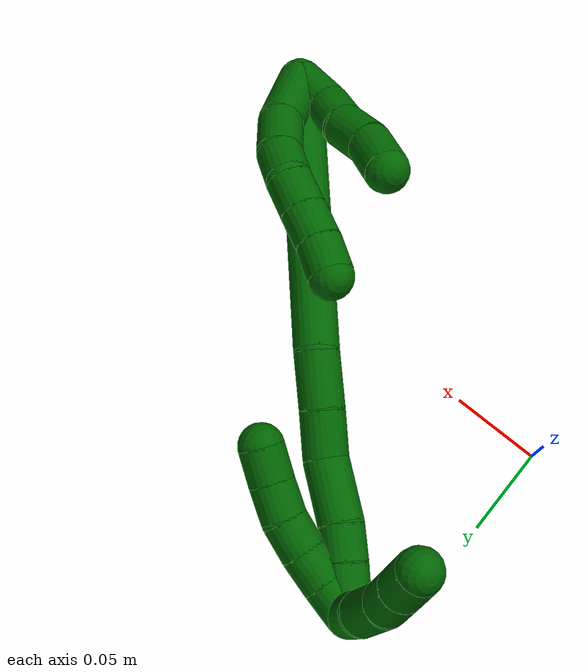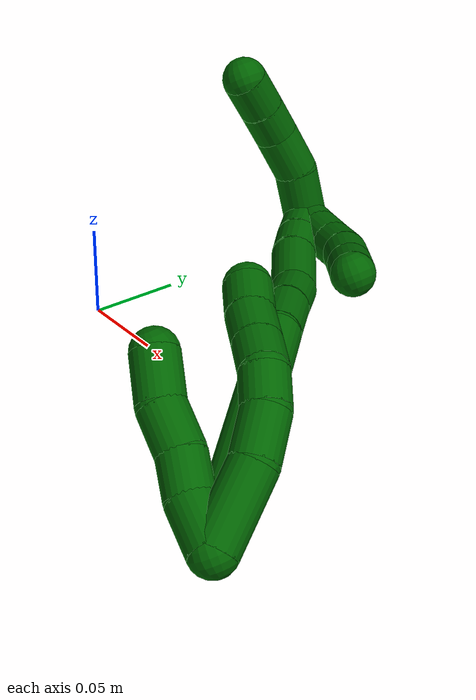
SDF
<sdf version="1.7">
 <world name="default">
  <model name="6">
   <static>0</static>
   <link name="6">
    <collision name="collision-cylinder-e_1_2_8">
     <pose>0.000849 0.016562 0.013532 -0.88574 0.039666 -0.018815</pose>
     <geometry><cylinder><radius>0.0125</radius><length>0.042808</length></cylinder></geometry>
     <surface>
      <friction><ode><mu>1.16</mu><mu2>1.16</mu2><slip1>0</slip1><slip2>0</slip2></ode></friction>
      <contact><ode><kp>1e+06</kp><kd>1</kd><max_vel>0</max_vel><min_depth>0.001</min_depth></ode></contact>
     </surface>
    </collision>
    <visual name="visual-cylinder-e_1_2_8">
     <pose>0.000849 0.016562 0.013532 -0.88574 0.039666 -0.018815</pose>
     <geometry><cylinder><radius>0.0125</radius><length>0.042808</length></cylinder></geometry>
     <material><ambient>0 0.392157 0.003922 1</ambient></material>
    </visual>
    <collision name="collision-cylinder-e_2_8_9">
     <pose>-0.000691 0.042164 0.036392 -0.769724 -0.181854 0.073832</pose>
     <geometry><cylinder><radius>0.0125</radius><length>0.026415</length></cylinder></geometry>
     <surface>
      <friction><ode><mu>1.16</mu><mu2>1.16</mu2><slip1>0</slip1><slip2>0</slip2></ode></friction>
      <contact><ode><kp>1e+06</kp><kd>1</kd><max_vel>0</max_vel><min_depth>0.001</min_depth></ode></contact>
     </surface>
    </collision>
    <visual name="visual-cylinder-e_2_8_9">
     <pose>-0.000691 0.042164 0.036392 -0.769724 -0.181854 0.073832</pose>
     <geometry><cylinder><radius>0.0125</radius><length>0.026415</length></cylinder></geometry>
     <material><ambient>0 0.392157 0.003922 1</ambient></material>
    </visual>
    <collision name="collision-cylinder-e_3_9_10">
     <pose>-0.006949 0.056442 0.053526 -0.591041 -0.390452 0.120256</pose>
     <geometry><cylinder><radius>0.0125</radius><length>0.020332</length></cylinder></geometry>
     <surface>
      <friction><ode><mu>1.16</mu><mu2>1.16</mu2><slip1>0</slip1><slip2>0</slip2></ode></friction>
      <contact><ode><kp>1e+06</kp><kd>1</kd><max_vel>0</max_vel><min_depth>0.001</min_depth></ode></contact>
     </surface>
    </collision>
    <visual name="visual-cylinder-e_3_9_10">
     <pose>-0.006949 0.056442 0.053526 -0.591041 -0.390452 0.120256</pose>
     <geometry><cylinder><radius>0.0125</radius><length>0.020332</length></cylinder></geometry>
     <material><ambient>0 0.392157 0.003922 1</ambient></material>
    </visual>
    <collision name="collision-cylinder-e_4_10_11">
     <pose>-0.017481 0.066335 0.067209 -0.669797 -0.726517 0.263047</pose>
     <geometry><cylinder><radius>0.0125</radius><length>0.020059</length></cylinder></geometry>
     <surface>
      <friction><ode><mu>1.16</mu><mu2>1.16</mu2><slip1>0</slip1><slip2>0</slip2></ode></friction>
      <contact><ode><kp>1e+06</kp><kd>1</kd><max_vel>0</max_vel><min_depth>0.001</min_depth></ode></contact>
     </surface>
    </collision>
    <visual name="visual-cylinder-e_4_10_11">
     <pose>-0.017481 0.066335 0.067209 -0.669797 -0.726517 0.263047</pose>
     <geometry><cylinder><radius>0.0125</radius><length>0.020059</length></cylinder></geometry>
     <material><ambient>0 0.392157 0.003922 1</ambient></material>
    </visual>
    <collision name="collision-cylinder-e_5_11_12">
     <pose>-0.030738 0.075512 0.079167 -0.63957 -0.716183 0.246593</pose>
     <geometry><cylinder><radius>0.0125</radius><length>0.020092</length></cylinder></geometry>
     <surface>
      <friction><ode><mu>1.16</mu><mu2>1.16</mu2><slip1>0</slip1><slip2>0</slip2></ode></friction>
      <contact><ode><kp>1e+06</kp><kd>1</kd><max_vel>0</max_vel><min_depth>0.001</min_depth></ode></contact>
     </surface>
    </collision>
    <visual name="visual-cylinder-e_5_11_12">
     <pose>-0.030738 0.075512 0.079167 -0.63957 -0.716183 0.246593</pose>
     <geometry><cylinder><radius>0.0125</radius><length>0.020092</length></cylinder></geometry>
     <material><ambient>0 0.392157 0.003922 1</ambient></material>
    </visual>
    <collision name="collision-cylinder-e_6_12_6">
     <pose>-0.043326 0.085475 0.091367 -0.726613 -0.631766 0.24724</pose>
     <geometry><cylinder><radius>0.0125</radius><length>0.020294</length></cylinder></geometry>
     <surface>
      <friction><ode><mu>1.16</mu><mu2>1.16</mu2><slip1>0</slip1><slip2>0</slip2></ode></friction>
      <contact><ode><kp>1e+06</kp><kd>1</kd><max_vel>0</max_vel><min_depth>0.001</min_depth></ode></contact>
     </surface>
    </collision>
    <visual name="visual-cylinder-e_6_12_6">
     <pose>-0.043326 0.085475 0.091367 -0.726613 -0.631766 0.24724</pose>
     <geometry><cylinder><radius>0.0125</radius><length>0.020294</length></cylinder></geometry>
     <material><ambient>0 0.392157 0.003922 1</ambient></material>
    </visual>
    <collision name="collision-cylinder-e_1_2_13">
     <pose>-0.00717 0.002641 0.011112 -0.233387 -0.560592 0.067467</pose>
     <geometry><cylinder><radius>0.0125</radius><length>0.026971</length></cylinder></geometry>
     <surface>
      <friction><ode><mu>1.16</mu><mu2>1.16</mu2><slip1>0</slip1><slip2>0</slip2></ode></friction>
      <contact><ode><kp>1e+06</kp><kd>1</kd><max_vel>0</max_vel><min_depth>0.001</min_depth></ode></contact>
     </surface>
    </collision>
    <visual name="visual-cylinder-e_1_2_13">
     <pose>-0.00717 0.002641 0.011112 -0.233387 -0.560592 0.067467</pose>
     <geometry><cylinder><radius>0.0125</radius><length>0.026971</length></cylinder></geometry>
     <material><ambient>0 0.392157 0.003922 1</ambient></material>
    </visual>
    <collision name="collision-cylinder-e_2_13_14">
     <pose>-0.017906 0.009048 0.031922 -0.370305 -0.330161 0.062386</pose>
     <geometry><cylinder><radius>0.0125</radius><length>0.021995</length></cylinder></geometry>
     <surface>
      <friction><ode><mu>1.16</mu><mu2>1.16</mu2><slip1>0</slip1><slip2>0</slip2></ode></friction>
      <contact><ode><kp>1e+06</kp><kd>1</kd><max_vel>0</max_vel><min_depth>0.001</min_depth></ode></contact>
     </surface>
    </collision>
    <visual name="visual-cylinder-e_2_13_14">
     <pose>-0.017906 0.009048 0.031922 -0.370305 -0.330161 0.062386</pose>
     <geometry><cylinder><radius>0.0125</radius><length>0.021995</length></cylinder></geometry>
     <material><ambient>0 0.392157 0.003922 1</ambient></material>
    </visual>
    <collision name="collision-cylinder-e_3_14_15">
     <pose>-0.02629 0.014624 0.052711 -0.161884 -0.405122 0.033317</pose>
     <geometry><cylinder><radius>0.0125</radius><length>0.024455</length></cylinder></geometry>
     <surface>
      <friction><ode><mu>1.16</mu><mu2>1.16</mu2><slip1>0</slip1><slip2>0</slip2></ode></friction>
      <contact><ode><kp>1e+06</kp><kd>1</kd><max_vel>0</max_vel><min_depth>0.001</min_depth></ode></contact>
     </surface>
    </collision>
    <visual name="visual-cylinder-e_3_14_15">
     <pose>-0.02629 0.014624 0.052711 -0.161884 -0.405122 0.033317</pose>
     <geometry><cylinder><radius>0.0125</radius><length>0.024455</length></cylinder></geometry>
     <material><ambient>0 0.392157 0.003922 1</ambient></material>
    </visual>
    <collision name="collision-cylinder-e_4_15_5">
     <pose>-0.035095 0.021692 0.075338 -0.427559 -0.304614 0.066622</pose>
     <geometry><cylinder><radius>0.0125</radius><length>0.026579</length></cylinder></geometry>
     <surface>
      <friction><ode><mu>1.16</mu><mu2>1.16</mu2><slip1>0</slip1><slip2>0</slip2></ode></friction>
      <contact><ode><kp>1e+06</kp><kd>1</kd><max_vel>0</max_vel><min_depth>0.001</min_depth></ode></contact>
     </surface>
    </collision>
    <visual name="visual-cylinder-e_4_15_5">
     <pose>-0.035095 0.021692 0.075338 -0.427559 -0.304614 0.066622</pose>
     <geometry><cylinder><radius>0.0125</radius><length>0.026579</length></cylinder></geometry>
     <material><ambient>0 0.392157 0.003922 1</ambient></material>
    </visual>
    <collision name="collision-cylinder-e_1_2_16">
     <pose>-0.042018 0.058793 0.033958 -1.04702 -0.554176 0.325432</pose>
     <geometry><cylinder><radius>0.0125</radius><length>0.159691</length></cylinder></geometry>
     <surface>
      <friction><ode><mu>1.16</mu><mu2>1.16</mu2><slip1>0</slip1><slip2>0</slip2></ode></friction>
      <contact><ode><kp>1e+06</kp><kd>1</kd><max_vel>0</max_vel><min_depth>0.001</min_depth></ode></contact>
     </surface>
    </collision>
    <visual name="visual-cylinder-e_1_2_16">
     <pose>-0.042018 0.058793 0.033958 -1.04702 -0.554176 0.325432</pose>
     <geometry><cylinder><radius>0.0125</radius><length>0.159691</length></cylinder></geometry>
     <material><ambient>0 0.392157 0.003922 1</ambient></material>
    </visual>
    <collision name="collision-cylinder-e_2_16_17">
     <pose>-0.094364 0.128637 0.072165 -1.20371 -0.717284 0.503998</pose>
     <geometry><cylinder><radius>0.0125</radius><length>0.031423</length></cylinder></geometry>
     <surface>
      <friction><ode><mu>1.16</mu><mu2>1.16</mu2><slip1>0</slip1><slip2>0</slip2></ode></friction>
      <contact><ode><kp>1e+06</kp><kd>1</kd><max_vel>0</max_vel><min_depth>0.001</min_depth></ode></contact>
     </surface>
    </collision>
    <visual name="visual-cylinder-e_2_16_17">
     <pose>-0.094364 0.128637 0.072165 -1.20371 -0.717284 0.503998</pose>
     <geometry><cylinder><radius>0.0125</radius><length>0.031423</length></cylinder></geometry>
     <material><ambient>0 0.392157 0.003922 1</ambient></material>
    </visual>
    <collision name="collision-cylinder-e_3_17_18">
     <pose>-0.113651 0.149022 0.079039 -1.29673 -0.745926 0.576376</pose>
     <geometry><cylinder><radius>0.0125</radius><length>0.026402</length></cylinder></geometry>
     <surface>
      <friction><ode><mu>1.16</mu><mu2>1.16</mu2><slip1>0</slip1><slip2>0</slip2></ode></friction>
      <contact><ode><kp>1e+06</kp><kd>1</kd><max_vel>0</max_vel><min_depth>0.001</min_depth></ode></contact>
     </surface>
    </collision>
    <visual name="visual-cylinder-e_3_17_18">
     <pose>-0.113651 0.149022 0.079039 -1.29673 -0.745926 0.576376</pose>
     <geometry><cylinder><radius>0.0125</radius><length>0.026402</length></cylinder></geometry>
     <material><ambient>0 0.392157 0.003922 1</ambient></material>
    </visual>
    <collision name="collision-cylinder-e_4_18_19">
     <pose>-0.134089 0.16936 0.089951 -0.925282 -0.694722 0.35728</pose>
     <geometry><cylinder><radius>0.0125</radius><length>0.035864</length></cylinder></geometry>
     <surface>
      <friction><ode><mu>1.16</mu><mu2>1.16</mu2><slip1>0</slip1><slip2>0</slip2></ode></friction>
      <contact><ode><kp>1e+06</kp><kd>1</kd><max_vel>0</max_vel><min_depth>0.001</min_depth></ode></contact>
     </surface>
    </collision>
    <visual name="visual-cylinder-e_4_18_19">
     <pose>-0.134089 0.16936 0.089951 -0.925282 -0.694722 0.35728</pose>
     <geometry><cylinder><radius>0.0125</radius><length>0.035864</length></cylinder></geometry>
     <material><ambient>0 0.392157 0.003922 1</ambient></material>
    </visual>
    <collision name="collision-cylinder-e_5_19_20">
     <pose>-0.151593 0.187439 0.101991 -1.08312 -0.644983 0.396736</pose>
     <geometry><cylinder><radius>0.0125</radius><length>0.020042</length></cylinder></geometry>
     <surface>
      <friction><ode><mu>1.16</mu><mu2>1.16</mu2><slip1>0</slip1><slip2>0</slip2></ode></friction>
      <contact><ode><kp>1e+06</kp><kd>1</kd><max_vel>0</max_vel><min_depth>0.001</min_depth></ode></contact>
     </surface>
    </collision>
    <visual name="visual-cylinder-e_5_19_20">
     <pose>-0.151593 0.187439 0.101991 -1.08312 -0.644983 0.396736</pose>
     <geometry><cylinder><radius>0.0125</radius><length>0.020042</length></cylinder></geometry>
     <material><ambient>0 0.392157 0.003922 1</ambient></material>
    </visual>
    <collision name="collision-cylinder-e_6_20_1">
     <pose>-0.165596 0.204231 0.110045 -1.15408 -0.643983 0.427672</pose>
     <geometry><cylinder><radius>0.0125</radius><length>0.026578</length></cylinder></geometry>
     <surface>
      <friction><ode><mu>1.16</mu><mu2>1.16</mu2><slip1>0</slip1><slip2>0</slip2></ode></friction>
      <contact><ode><kp>1e+06</kp><kd>1</kd><max_vel>0</max_vel><min_depth>0.001</min_depth></ode></contact>
     </surface>
    </collision>
    <visual name="visual-cylinder-e_6_20_1">
     <pose>-0.165596 0.204231 0.110045 -1.15408 -0.643983 0.427672</pose>
     <geometry><cylinder><radius>0.0125</radius><length>0.026578</length></cylinder></geometry>
     <material><ambient>0 0.392157 0.003922 1</ambient></material>
    </visual>
    <collision name="collision-cylinder-e_1_1_21">
     <pose>-0.165105 0.211616 0.109569 2.68736 1.01024 2.34985</pose>
     <geometry><cylinder><radius>0.0125</radius><length>0.02</length></cylinder></geometry>
     <surface>
      <friction><ode><mu>1.16</mu><mu2>1.16</mu2><slip1>0</slip1><slip2>0</slip2></ode></friction>
      <contact><ode><kp>1e+06</kp><kd>1</kd><max_vel>0</max_vel><min_depth>0.001</min_depth></ode></contact>
     </surface>
    </collision>
    <visual name="visual-cylinder-e_1_1_21">
     <pose>-0.165105 0.211616 0.109569 2.68736 1.01024 2.34985</pose>
     <geometry><cylinder><radius>0.0125</radius><length>0.02</length></cylinder></geometry>
     <material><ambient>0 0.392157 0.003922 1</ambient></material>
    </visual>
    <collision name="collision-cylinder-e_2_21_22">
     <pose>-0.14798 0.206635 0.100541 2.58438 1.04631 2.22078</pose>
     <geometry><cylinder><radius>0.0125</radius><length>0.02</length></cylinder></geometry>
     <surface>
      <friction><ode><mu>1.16</mu><mu2>1.16</mu2><slip1>0</slip1><slip2>0</slip2></ode></friction>
      <contact><ode><kp>1e+06</kp><kd>1</kd><max_vel>0</max_vel><min_depth>0.001</min_depth></ode></contact>
     </surface>
    </collision>
    <visual name="visual-cylinder-e_2_21_22">
     <pose>-0.14798 0.206635 0.100541 2.58438 1.04631 2.22078</pose>
     <geometry><cylinder><radius>0.0125</radius><length>0.02</length></cylinder></geometry>
     <material><ambient>0 0.392157 0.003922 1</ambient></material>
    </visual>
    <collision name="collision-cylinder-e_3_22_23">
     <pose>-0.130437 0.200695 0.093101 2.34041 1.09458 1.92694</pose>
     <geometry><cylinder><radius>0.0125</radius><length>0.02</length></cylinder></geometry>
     <surface>
      <friction><ode><mu>1.16</mu><mu2>1.16</mu2><slip1>0</slip1><slip2>0</slip2></ode></friction>
      <contact><ode><kp>1e+06</kp><kd>1</kd><max_vel>0</max_vel><min_depth>0.001</min_depth></ode></contact>
     </surface>
    </collision>
    <visual name="visual-cylinder-e_3_22_23">
     <pose>-0.130437 0.200695 0.093101 2.34041 1.09458 1.92694</pose>
     <geometry><cylinder><radius>0.0125</radius><length>0.02</length></cylinder></geometry>
     <material><ambient>0 0.392157 0.003922 1</ambient></material>
    </visual>
    <collision name="collision-cylinder-e_4_23_24">
     <pose>-0.113504 0.192274 0.086917 2.09919 0.934914 1.44235</pose>
     <geometry><cylinder><radius>0.0125</radius><length>0.02</length></cylinder></geometry>
     <surface>
      <friction><ode><mu>1.16</mu><mu2>1.16</mu2><slip1>0</slip1><slip2>0</slip2></ode></friction>
      <contact><ode><kp>1e+06</kp><kd>1</kd><max_vel>0</max_vel><min_depth>0.001</min_depth></ode></contact>
     </surface>
    </collision>
    <visual name="visual-cylinder-e_4_23_24">
     <pose>-0.113504 0.192274 0.086917 2.09919 0.934914 1.44235</pose>
     <geometry><cylinder><radius>0.0125</radius><length>0.02</length></cylinder></geometry>
     <material><ambient>0 0.392157 0.003922 1</ambient></material>
    </visual>
    <collision name="collision-cylinder-e_5_24_4">
     <pose>-0.097265 0.181796 0.081858 1.9392 0.960259 1.2988</pose>
     <geometry><cylinder><radius>0.0125</radius><length>0.02</length></cylinder></geometry>
     <surface>
      <friction><ode><mu>1.16</mu><mu2>1.16</mu2><slip1>0</slip1><slip2>0</slip2></ode></friction>
      <contact><ode><kp>1e+06</kp><kd>1</kd><max_vel>0</max_vel><min_depth>0.001</min_depth></ode></contact>
     </surface>
    </collision>
    <visual name="visual-cylinder-e_5_24_4">
     <pose>-0.097265 0.181796 0.081858 1.9392 0.960259 1.2988</pose>
     <geometry><cylinder><radius>0.0125</radius><length>0.02</length></cylinder></geometry>
     <material><ambient>0 0.392157 0.003922 1</ambient></material>
    </visual>
    <collision name="collision-cylinder-e_1_1_25">
     <pose>-0.167254 0.212637 0.128528 0.092271 0.417716 0.01957</pose>
     <geometry><cylinder><radius>0.0125</radius><length>0.031164</length></cylinder></geometry>
     <surface>
      <friction><ode><mu>1.16</mu><mu2>1.16</mu2><slip1>0</slip1><slip2>0</slip2></ode></friction>
      <contact><ode><kp>1e+06</kp><kd>1</kd><max_vel>0</max_vel><min_depth>0.001</min_depth></ode></contact>
     </surface>
    </collision>
    <visual name="visual-cylinder-e_1_1_25">
     <pose>-0.167254 0.212637 0.128528 0.092271 0.417716 0.01957</pose>
     <geometry><cylinder><radius>0.0125</radius><length>0.031164</length></cylinder></geometry>
     <material><ambient>0 0.392157 0.003922 1</ambient></material>
    </visual>
    <collision name="collision-cylinder-e_2_25_26">
     <pose>-0.156931 0.206862 0.154598 0.359049 0.305252 0.055816</pose>
     <geometry><cylinder><radius>0.0125</radius><length>0.026628</length></cylinder></geometry>
     <surface>
      <friction><ode><mu>1.16</mu><mu2>1.16</mu2><slip1>0</slip1><slip2>0</slip2></ode></friction>
      <contact><ode><kp>1e+06</kp><kd>1</kd><max_vel>0</max_vel><min_depth>0.001</min_depth></ode></contact>
     </surface>
    </collision>
    <visual name="visual-cylinder-e_2_25_26">
     <pose>-0.156931 0.206862 0.154598 0.359049 0.305252 0.055816</pose>
     <geometry><cylinder><radius>0.0125</radius><length>0.026628</length></cylinder></geometry>
     <material><ambient>0 0.392157 0.003922 1</ambient></material>
    </visual>
    <collision name="collision-cylinder-e_3_26_27">
     <pose>-0.148553 0.198145 0.174536 0.48631 0.448107 0.112937</pose>
     <geometry><cylinder><radius>0.0125</radius><length>0.020205</length></cylinder></geometry>
     <surface>
      <friction><ode><mu>1.16</mu><mu2>1.16</mu2><slip1>0</slip1><slip2>0</slip2></ode></friction>
      <contact><ode><kp>1e+06</kp><kd>1</kd><max_vel>0</max_vel><min_depth>0.001</min_depth></ode></contact>
     </surface>
    </collision>
    <visual name="visual-cylinder-e_3_26_27">
     <pose>-0.148553 0.198145 0.174536 0.48631 0.448107 0.112937</pose>
     <geometry><cylinder><radius>0.0125</radius><length>0.020205</length></cylinder></geometry>
     <material><ambient>0 0.392157 0.003922 1</ambient></material>
    </visual>
    <collision name="collision-cylinder-e_4_27_3">
     <pose>-0.139393 0.189107 0.191262 0.503792 0.449783 0.117613</pose>
     <geometry><cylinder><radius>0.0125</radius><length>0.022003</length></cylinder></geometry>
     <surface>
      <friction><ode><mu>1.16</mu><mu2>1.16</mu2><slip1>0</slip1><slip2>0</slip2></ode></friction>
      <contact><ode><kp>1e+06</kp><kd>1</kd><max_vel>0</max_vel><min_depth>0.001</min_depth></ode></contact>
     </surface>
    </collision>
    <visual name="visual-cylinder-e_4_27_3">
     <pose>-0.139393 0.189107 0.191262 0.503792 0.449783 0.117613</pose>
     <geometry><cylinder><radius>0.0125</radius><length>0.022003</length></cylinder></geometry>
     <material><ambient>0 0.392157 0.003922 1</ambient></material>
    </visual>
    <collision name="collision-sphere-3">
     <pose>-0.134609 0.184324 0.199939 0 -0 0</pose>
     <geometry><sphere><radius>0.0125</radius></sphere></geometry>
     <surface>
      <friction><ode><mu>1.16</mu><mu2>1.16</mu2><slip1>0</slip1><slip2>0</slip2></ode></friction>
      <contact><ode><kp>1e+06</kp><kd>1</kd><max_vel>0</max_vel><min_depth>0.001</min_depth></ode></contact>
     </surface>
    </collision>
    <visual name="visual-sphere-3">
     <pose>-0.134609 0.184324 0.199939 0 -0 0</pose>
     <geometry><sphere><radius>0.0125</radius></sphere></geometry>
     <material><ambient>0 0.392157 0.003922 1</ambient></material>
    </visual>
    <collision name="collision-sphere-27">
     <pose>-0.144176 0.19389 0.182586 0 -0 0</pose>
     <geometry><sphere><radius>0.0125</radius></sphere></geometry>
     <surface>
      <friction><ode><mu>1.16</mu><mu2>1.16</mu2><slip1>0</slip1><slip2>0</slip2></ode></friction>
      <contact><ode><kp>1e+06</kp><kd>1</kd><max_vel>0</max_vel><min_depth>0.001</min_depth></ode></contact>
     </surface>
    </collision>
    <visual name="visual-sphere-27">
     <pose>-0.144176 0.19389 0.182586 0 -0 0</pose>
     <geometry><sphere><radius>0.0125</radius></sphere></geometry>
     <material><ambient>0 0.392157 0.003922 1</ambient></material>
    </visual>
    <collision name="collision-sphere-26">
     <pose>-0.15293 0.2024 0.166487 0 -0 0</pose>
     <geometry><sphere><radius>0.0125</radius></sphere></geometry>
     <surface>
      <friction><ode><mu>1.16</mu><mu2>1.16</mu2><slip1>0</slip1><slip2>0</slip2></ode></friction>
      <contact><ode><kp>1e+06</kp><kd>1</kd><max_vel>0</max_vel><min_depth>0.001</min_depth></ode></contact>
     </surface>
    </collision>
    <visual name="visual-sphere-26">
     <pose>-0.15293 0.2024 0.166487 0 -0 0</pose>
     <geometry><sphere><radius>0.0125</radius></sphere></geometry>
     <material><ambient>0 0.392157 0.003922 1</ambient></material>
    </visual>
    <collision name="collision-sphere-25">
     <pose>-0.160932 0.211324 0.14271 0 -0 0</pose>
     <geometry><sphere><radius>0.0125</radius></sphere></geometry>
     <surface>
      <friction><ode><mu>1.16</mu><mu2>1.16</mu2><slip1>0</slip1><slip2>0</slip2></ode></friction>
      <contact><ode><kp>1e+06</kp><kd>1</kd><max_vel>0</max_vel><min_depth>0.001</min_depth></ode></contact>
     </surface>
    </collision>
    <visual name="visual-sphere-25">
     <pose>-0.160932 0.211324 0.14271 0 -0 0</pose>
     <geometry><sphere><radius>0.0125</radius></sphere></geometry>
     <material><ambient>0 0.392157 0.003922 1</ambient></material>
    </visual>
    <collision name="collision-sphere-4">
     <pose>-0.089071 0.176448 0.079794 0 -0 0</pose>
     <geometry><sphere><radius>0.0125</radius></sphere></geometry>
     <surface>
      <friction><ode><mu>1.16</mu><mu2>1.16</mu2><slip1>0</slip1><slip2>0</slip2></ode></friction>
      <contact><ode><kp>1e+06</kp><kd>1</kd><max_vel>0</max_vel><min_depth>0.001</min_depth></ode></contact>
     </surface>
    </collision>
    <visual name="visual-sphere-4">
     <pose>-0.089071 0.176448 0.079794 0 -0 0</pose>
     <geometry><sphere><radius>0.0125</radius></sphere></geometry>
     <material><ambient>0 0.392157 0.003922 1</ambient></material>
    </visual>
    <collision name="collision-sphere-24">
     <pose>-0.105458 0.187145 0.083923 0 -0 0</pose>
     <geometry><sphere><radius>0.0125</radius></sphere></geometry>
     <surface>
      <friction><ode><mu>1.16</mu><mu2>1.16</mu2><slip1>0</slip1><slip2>0</slip2></ode></friction>
      <contact><ode><kp>1e+06</kp><kd>1</kd><max_vel>0</max_vel><min_depth>0.001</min_depth></ode></contact>
     </surface>
    </collision>
    <visual name="visual-sphere-24">
     <pose>-0.105458 0.187145 0.083923 0 -0 0</pose>
     <geometry><sphere><radius>0.0125</radius></sphere></geometry>
     <material><ambient>0 0.392157 0.003922 1</ambient></material>
    </visual>
    <collision name="collision-sphere-23">
     <pose>-0.121549 0.197403 0.089911 0 -0 0</pose>
     <geometry><sphere><radius>0.0125</radius></sphere></geometry>
     <surface>
      <friction><ode><mu>1.16</mu><mu2>1.16</mu2><slip1>0</slip1><slip2>0</slip2></ode></friction>
      <contact><ode><kp>1e+06</kp><kd>1</kd><max_vel>0</max_vel><min_depth>0.001</min_depth></ode></contact>
     </surface>
    </collision>
    <visual name="visual-sphere-23">
     <pose>-0.121549 0.197403 0.089911 0 -0 0</pose>
     <geometry><sphere><radius>0.0125</radius></sphere></geometry>
     <material><ambient>0 0.392157 0.003922 1</ambient></material>
    </visual>
    <collision name="collision-sphere-22">
     <pose>-0.139324 0.203987 0.096291 0 -0 0</pose>
     <geometry><sphere><radius>0.0125</radius></sphere></geometry>
     <surface>
      <friction><ode><mu>1.16</mu><mu2>1.16</mu2><slip1>0</slip1><slip2>0</slip2></ode></friction>
      <contact><ode><kp>1e+06</kp><kd>1</kd><max_vel>0</max_vel><min_depth>0.001</min_depth></ode></contact>
     </surface>
    </collision>
    <visual name="visual-sphere-22">
     <pose>-0.139324 0.203987 0.096291 0 -0 0</pose>
     <geometry><sphere><radius>0.0125</radius></sphere></geometry>
     <material><ambient>0 0.392157 0.003922 1</ambient></material>
    </visual>
    <collision name="collision-sphere-21">
     <pose>-0.156636 0.209283 0.104791 0 -0 0</pose>
     <geometry><sphere><radius>0.0125</radius></sphere></geometry>
     <surface>
      <friction><ode><mu>1.16</mu><mu2>1.16</mu2><slip1>0</slip1><slip2>0</slip2></ode></friction>
      <contact><ode><kp>1e+06</kp><kd>1</kd><max_vel>0</max_vel><min_depth>0.001</min_depth></ode></contact>
     </surface>
    </collision>
    <visual name="visual-sphere-21">
     <pose>-0.156636 0.209283 0.104791 0 -0 0</pose>
     <geometry><sphere><radius>0.0125</radius></sphere></geometry>
     <material><ambient>0 0.392157 0.003922 1</ambient></material>
    </visual>
    <collision name="collision-sphere-1">
     <pose>-0.173575 0.213949 0.114346 0 -0 0</pose>
     <geometry><sphere><radius>0.0125</radius></sphere></geometry>
     <surface>
      <friction><ode><mu>1.16</mu><mu2>1.16</mu2><slip1>0</slip1><slip2>0</slip2></ode></friction>
      <contact><ode><kp>1e+06</kp><kd>1</kd><max_vel>0</max_vel><min_depth>0.001</min_depth></ode></contact>
     </surface>
    </collision>
    <visual name="visual-sphere-1">
     <pose>-0.173575 0.213949 0.114346 0 -0 0</pose>
     <geometry><sphere><radius>0.0125</radius></sphere></geometry>
     <material><ambient>0 0.392157 0.003922 1</ambient></material>
    </visual>
    <collision name="collision-sphere-12">
     <pose>-0.037333 0.080035 0.085247 0 -0 0</pose>
     <geometry><sphere><radius>0.0125</radius></sphere></geometry>
     <surface>
      <friction><ode><mu>1.16</mu><mu2>1.16</mu2><slip1>0</slip1><slip2>0</slip2></ode></friction>
      <contact><ode><kp>1e+06</kp><kd>1</kd><max_vel>0</max_vel><min_depth>0.001</min_depth></ode></contact>
     </surface>
    </collision>
    <visual name="visual-sphere-12">
     <pose>-0.037333 0.080035 0.085247 0 -0 0</pose>
     <geometry><sphere><radius>0.0125</radius></sphere></geometry>
     <material><ambient>0 0.392157 0.003922 1</ambient></material>
    </visual>
    <collision name="collision-sphere-11">
     <pose>-0.024143 0.070989 0.073087 0 -0 0</pose>
     <geometry><sphere><radius>0.0125</radius></sphere></geometry>
     <surface>
      <friction><ode><mu>1.16</mu><mu2>1.16</mu2><slip1>0</slip1><slip2>0</slip2></ode></friction>
      <contact><ode><kp>1e+06</kp><kd>1</kd><max_vel>0</max_vel><min_depth>0.001</min_depth></ode></contact>
     </surface>
    </collision>
    <visual name="visual-sphere-11">
     <pose>-0.024143 0.070989 0.073087 0 -0 0</pose>
     <geometry><sphere><radius>0.0125</radius></sphere></geometry>
     <material><ambient>0 0.392157 0.003922 1</ambient></material>
    </visual>
    <collision name="collision-sphere-10">
     <pose>-0.010818 0.061681 0.061332 0 -0 0</pose>
     <geometry><sphere><radius>0.0125</radius></sphere></geometry>
     <surface>
      <friction><ode><mu>1.16</mu><mu2>1.16</mu2><slip1>0</slip1><slip2>0</slip2></ode></friction>
      <contact><ode><kp>1e+06</kp><kd>1</kd><max_vel>0</max_vel><min_depth>0.001</min_depth></ode></contact>
     </surface>
    </collision>
    <visual name="visual-sphere-10">
     <pose>-0.010818 0.061681 0.061332 0 -0 0</pose>
     <geometry><sphere><radius>0.0125</radius></sphere></geometry>
     <material><ambient>0 0.392157 0.003922 1</ambient></material>
    </visual>
    <collision name="collision-sphere-9">
     <pose>-0.00308 0.051204 0.04572 0 -0 0</pose>
     <geometry><sphere><radius>0.0125</radius></sphere></geometry>
     <surface>
      <friction><ode><mu>1.16</mu><mu2>1.16</mu2><slip1>0</slip1><slip2>0</slip2></ode></friction>
      <contact><ode><kp>1e+06</kp><kd>1</kd><max_vel>0</max_vel><min_depth>0.001</min_depth></ode></contact>
     </surface>
    </collision>
    <visual name="visual-sphere-9">
     <pose>-0.00308 0.051204 0.04572 0 -0 0</pose>
     <geometry><sphere><radius>0.0125</radius></sphere></geometry>
     <material><ambient>0 0.392157 0.003922 1</ambient></material>
    </visual>
    <collision name="collision-sphere-2">
     <geometry><sphere><radius>0.0125</radius></sphere></geometry>
     <surface>
      <friction><ode><mu>1.16</mu><mu2>1.16</mu2><slip1>0</slip1><slip2>0</slip2></ode></friction>
      <contact><ode><kp>1e+06</kp><kd>1</kd><max_vel>0</max_vel><min_depth>0.001</min_depth></ode></contact>
     </surface>
    </collision>
    <visual name="visual-sphere-2">
     <geometry><sphere><radius>0.0125</radius></sphere></geometry>
     <material><ambient>0 0.392157 0.003922 1</ambient></material>
    </visual>
    <collision name="collision-sphere-19">
     <pose>-0.145568 0.180364 0.098238 0 -0 0</pose>
     <geometry><sphere><radius>0.0125</radius></sphere></geometry>
     <surface>
      <friction><ode><mu>1.16</mu><mu2>1.16</mu2><slip1>0</slip1><slip2>0</slip2></ode></friction>
      <contact><ode><kp>1e+06</kp><kd>1</kd><max_vel>0</max_vel><min_depth>0.001</min_depth></ode></contact>
     </surface>
    </collision>
    <visual name="visual-sphere-19">
     <pose>-0.145568 0.180364 0.098238 0 -0 0</pose>
     <geometry><sphere><radius>0.0125</radius></sphere></geometry>
     <material><ambient>0 0.392157 0.003922 1</ambient></material>
    </visual>
    <collision name="collision-sphere-8">
     <pose>0.001698 0.033124 0.027064 0 -0 0</pose>
     <geometry><sphere><radius>0.0125</radius></sphere></geometry>
     <surface>
      <friction><ode><mu>1.16</mu><mu2>1.16</mu2><slip1>0</slip1><slip2>0</slip2></ode></friction>
      <contact><ode><kp>1e+06</kp><kd>1</kd><max_vel>0</max_vel><min_depth>0.001</min_depth></ode></contact>
     </surface>
    </collision>
    <visual name="visual-sphere-8">
     <pose>0.001698 0.033124 0.027064 0 -0 0</pose>
     <geometry><sphere><radius>0.0125</radius></sphere></geometry>
     <material><ambient>0 0.392157 0.003922 1</ambient></material>
    </visual>
    <collision name="collision-sphere-6">
     <pose>-0.049318 0.090915 0.097488 0 -0 0</pose>
     <geometry><sphere><radius>0.0125</radius></sphere></geometry>
     <surface>
      <friction><ode><mu>1.16</mu><mu2>1.16</mu2><slip1>0</slip1><slip2>0</slip2></ode></friction>
      <contact><ode><kp>1e+06</kp><kd>1</kd><max_vel>0</max_vel><min_depth>0.001</min_depth></ode></contact>
     </surface>
    </collision>
    <visual name="visual-sphere-6">
     <pose>-0.049318 0.090915 0.097488 0 -0 0</pose>
     <geometry><sphere><radius>0.0125</radius></sphere></geometry>
     <material><ambient>0 0.392157 0.003922 1</ambient></material>
    </visual>
    <collision name="collision-sphere-13">
     <pose>-0.01434 0.005283 0.022224 0 -0 0</pose>
     <geometry><sphere><radius>0.0125</radius></sphere></geometry>
     <surface>
      <friction><ode><mu>1.16</mu><mu2>1.16</mu2><slip1>0</slip1><slip2>0</slip2></ode></friction>
      <contact><ode><kp>1e+06</kp><kd>1</kd><max_vel>0</max_vel><min_depth>0.001</min_depth></ode></contact>
     </surface>
    </collision>
    <visual name="visual-sphere-13">
     <pose>-0.01434 0.005283 0.022224 0 -0 0</pose>
     <geometry><sphere><radius>0.0125</radius></sphere></geometry>
     <material><ambient>0 0.392157 0.003922 1</ambient></material>
    </visual>
    <collision name="collision-sphere-14">
     <pose>-0.021471 0.012813 0.04162 0 -0 0</pose>
     <geometry><sphere><radius>0.0125</radius></sphere></geometry>
     <surface>
      <friction><ode><mu>1.16</mu><mu2>1.16</mu2><slip1>0</slip1><slip2>0</slip2></ode></friction>
      <contact><ode><kp>1e+06</kp><kd>1</kd><max_vel>0</max_vel><min_depth>0.001</min_depth></ode></contact>
     </surface>
    </collision>
    <visual name="visual-sphere-14">
     <pose>-0.021471 0.012813 0.04162 0 -0 0</pose>
     <geometry><sphere><radius>0.0125</radius></sphere></geometry>
     <material><ambient>0 0.392157 0.003922 1</ambient></material>
    </visual>
    <collision name="collision-sphere-15">
     <pose>-0.031109 0.016435 0.063802 0 -0 0</pose>
     <geometry><sphere><radius>0.0125</radius></sphere></geometry>
     <surface>
      <friction><ode><mu>1.16</mu><mu2>1.16</mu2><slip1>0</slip1><slip2>0</slip2></ode></friction>
      <contact><ode><kp>1e+06</kp><kd>1</kd><max_vel>0</max_vel><min_depth>0.001</min_depth></ode></contact>
     </surface>
    </collision>
    <visual name="visual-sphere-15">
     <pose>-0.031109 0.016435 0.063802 0 -0 0</pose>
     <geometry><sphere><radius>0.0125</radius></sphere></geometry>
     <material><ambient>0 0.392157 0.003922 1</ambient></material>
    </visual>
    <collision name="collision-sphere-5">
     <pose>-0.039081 0.026949 0.086875 0 -0 0</pose>
     <geometry><sphere><radius>0.0125</radius></sphere></geometry>
     <surface>
      <friction><ode><mu>1.16</mu><mu2>1.16</mu2><slip1>0</slip1><slip2>0</slip2></ode></friction>
      <contact><ode><kp>1e+06</kp><kd>1</kd><max_vel>0</max_vel><min_depth>0.001</min_depth></ode></contact>
     </surface>
    </collision>
    <visual name="visual-sphere-5">
     <pose>-0.039081 0.026949 0.086875 0 -0 0</pose>
     <geometry><sphere><radius>0.0125</radius></sphere></geometry>
     <material><ambient>0 0.392157 0.003922 1</ambient></material>
    </visual>
    <collision name="collision-sphere-16">
     <pose>-0.084036 0.117586 0.067916 0 -0 0</pose>
     <geometry><sphere><radius>0.0125</radius></sphere></geometry>
     <surface>
      <friction><ode><mu>1.16</mu><mu2>1.16</mu2><slip1>0</slip1><slip2>0</slip2></ode></friction>
      <contact><ode><kp>1e+06</kp><kd>1</kd><max_vel>0</max_vel><min_depth>0.001</min_depth></ode></contact>
     </surface>
    </collision>
    <visual name="visual-sphere-16">
     <pose>-0.084036 0.117586 0.067916 0 -0 0</pose>
     <geometry><sphere><radius>0.0125</radius></sphere></geometry>
     <material><ambient>0 0.392157 0.003922 1</ambient></material>
    </visual>
    <collision name="collision-sphere-17">
     <pose>-0.104692 0.139689 0.076415 0 -0 0</pose>
     <geometry><sphere><radius>0.0125</radius></sphere></geometry>
     <surface>
      <friction><ode><mu>1.16</mu><mu2>1.16</mu2><slip1>0</slip1><slip2>0</slip2></ode></friction>
      <contact><ode><kp>1e+06</kp><kd>1</kd><max_vel>0</max_vel><min_depth>0.001</min_depth></ode></contact>
     </surface>
    </collision>
    <visual name="visual-sphere-17">
     <pose>-0.104692 0.139689 0.076415 0 -0 0</pose>
     <geometry><sphere><radius>0.0125</radius></sphere></geometry>
     <material><ambient>0 0.392157 0.003922 1</ambient></material>
    </visual>
    <collision name="collision-sphere-18">
     <pose>-0.12261 0.158356 0.081663 0 -0 0</pose>
     <geometry><sphere><radius>0.0125</radius></sphere></geometry>
     <surface>
      <friction><ode><mu>1.16</mu><mu2>1.16</mu2><slip1>0</slip1><slip2>0</slip2></ode></friction>
      <contact><ode><kp>1e+06</kp><kd>1</kd><max_vel>0</max_vel><min_depth>0.001</min_depth></ode></contact>
     </surface>
    </collision>
    <visual name="visual-sphere-18">
     <pose>-0.12261 0.158356 0.081663 0 -0 0</pose>
     <geometry><sphere><radius>0.0125</radius></sphere></geometry>
     <material><ambient>0 0.392157 0.003922 1</ambient></material>
    </visual>
    <collision name="collision-sphere-20">
     <pose>-0.157618 0.194513 0.105743 0 -0 0</pose>
     <geometry><sphere><radius>0.0125</radius></sphere></geometry>
     <surface>
      <friction><ode><mu>1.16</mu><mu2>1.16</mu2><slip1>0</slip1><slip2>0</slip2></ode></friction>
      <contact><ode><kp>1e+06</kp><kd>1</kd><max_vel>0</max_vel><min_depth>0.001</min_depth></ode></contact>
     </surface>
    </collision>
    <visual name="visual-sphere-20">
     <pose>-0.157618 0.194513 0.105743 0 -0 0</pose>
     <geometry><sphere><radius>0.0125</radius></sphere></geometry>
     <material><ambient>0 0.392157 0.003922 1</ambient></material>
    </visual>
    <inertial>
     <pose>-0.076804 0.108721 0.073312 0 -0 0</pose>
     <mass>0.75</mass>
     <inertia>
      <ixx>0.000415</ixx>
      <ixy>0</ixy>
      <ixz>0</ixz>
      <iyy>0.000385</iyy>
      <iyz>0</iyz>
      <izz>-5.7e-05</izz>
     </inertia>
    </inertial>
   </link>
   <pose>0.230729 -0.086541 0.012354 0.073235 -0.558588 -0.052561</pose>
  </model>
 </world>
</sdf>
